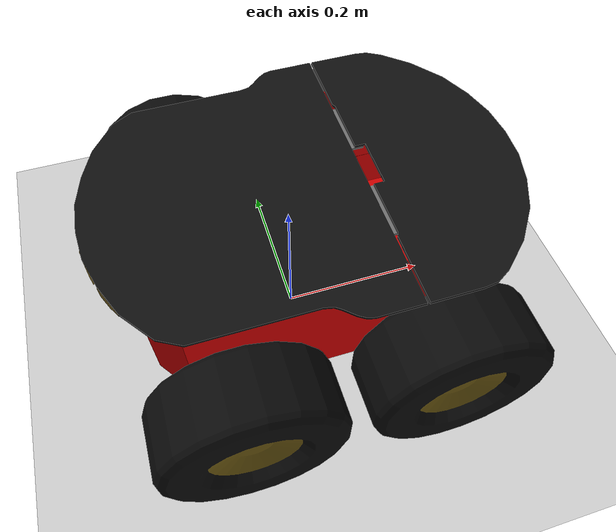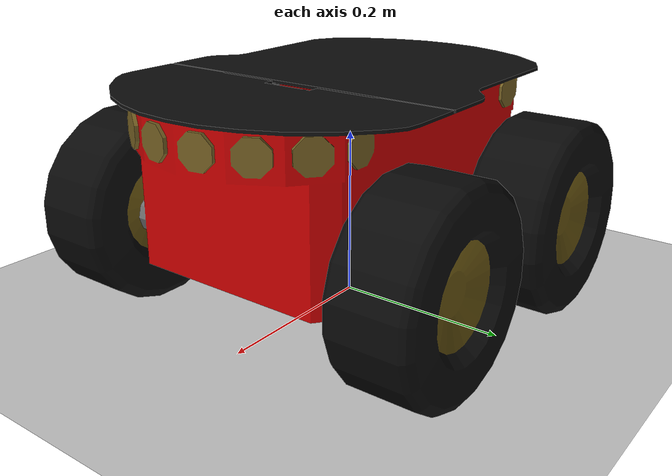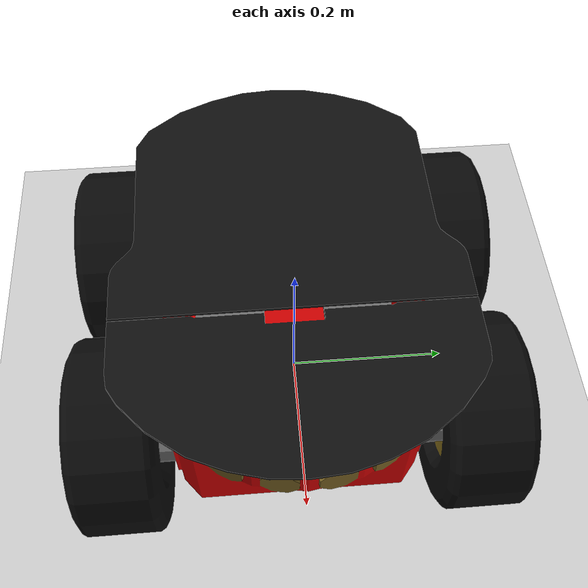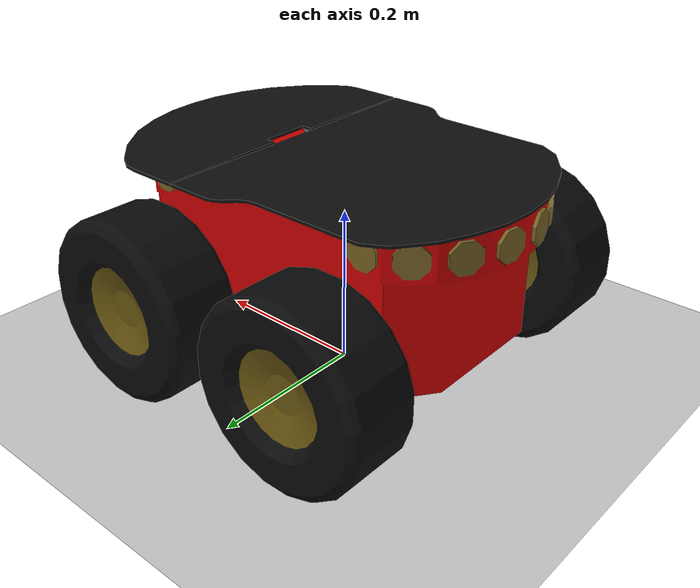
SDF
<sdf version="1.6">
 <world name="default">
  <light name="sun" type="directional">
   <pose>0 0 10 0 -0 0</pose>
   <diffuse>0.8 0.8 0.8 1</diffuse>
   <specular>0.1 0.1 0.1 1</specular>
   <attenuation>
    <range>1000</range>
    <constant>0.9</constant>
    <linear>0.01</linear>
    <quadratic>0.001</quadratic>
   </attenuation>
   <direction>-0.5 0.5 -1</direction>
  </light>
  <model name="ground_plane">
   <static>1</static>
   <link name="link">
    <collision name="collision">
     <geometry><plane><normal>0 0 1</normal><size>100 100</size></plane></geometry>
     <surface><friction><ode><mu>100</mu><mu2>50</mu2></ode></friction></surface>
    </collision>
    <visual name="visual">
     <cast_shadows>0</cast_shadows>
     <geometry><plane><normal>0 0 1</normal><size>100 100</size></plane></geometry>
     <material>
      <script><uri>file://media/materials/scripts/gazebo.material</uri><name>Gazebo/Grey</name></script>
     </material>
    </visual>
   </link>
  </model>
  <gravity>0 0 -9.8</gravity>
  <magnetic_field>6e-06 2.3e-05 -4.2e-05</magnetic_field>
  <atmosphere type="adiabatic"/>
  <physics name="default_physics" default="0" type="ode">
   <max_step_size>0.001</max_step_size>
   <real_time_factor>1</real_time_factor>
   <real_time_update_rate>1000</real_time_update_rate>
  </physics>
  <scene><ambient>0.4 0.4 0.4 1</ambient><background>0.7 0.7 0.7 1</background><shadows>1</shadows></scene>
  <spherical_coordinates>
   <surface_model>EARTH_WGS84</surface_model>
   <latitude_deg>0</latitude_deg>
   <longitude_deg>0</longitude_deg>
   <elevation>0</elevation>
   <heading_deg>0</heading_deg>
  </spherical_coordinates>
  <light name="sun_0" type="directional">
   <pose>-42.1596 34.572 10 0 -0 0</pose>
   <diffuse>0.8 0.8 0.8 1</diffuse>
   <specular>0.1 0.1 0.1 1</specular>
   <attenuation>
    <range>1000</range>
    <constant>0.9</constant>
    <linear>0.01</linear>
    <quadratic>0.001</quadratic>
   </attenuation>
   <direction>-0.5 0.5 -1</direction>
  </light>
  <model name="pioneer3at">
   <pose>0.013224 -0.008197 0.169996 3.4e-05 -0 0.002083</pose>
   <static>0</static>
   <link name="chassis">
    <inertial>
     <mass>14</mass>
     <inertia>
      <ixx>0.147117</ixx>
      <ixy>0</ixy>
      <ixz>0</ixz>
      <iyy>0.334951</iyy>
      <iyz>0</iyz>
      <izz>0.397834</izz>
     </inertia>
    </inertial>
    <collision name="collision"><geometry><box><size>0.501 0.3 0.19</size></box></geometry></collision>
    <visual name="visual">
     <geometry><mesh><uri>model://pioneer3at/meshes/chassis.dae</uri><scale>1 1 1</scale></mesh></geometry>
    </visual>
   </link>
   <link name="right_front_wheel">
    <pose>0.125 -0.201 -0.06 1.5707 -0 0</pose>
    <inertial>
     <mass>1.5</mass>
     <inertia>
      <ixx>0.00524062</ixx>
      <iyy>0.00524062</iyy>
      <izz>0.009075</izz>
      <ixy>0</ixy>
      <ixz>0</ixz>
      <iyz>0</iyz>
     </inertia>
    </inertial>
    <collision name="collision">
     <geometry><cylinder><radius>0.11</radius><length>0.075</length></cylinder></geometry>
     <surface><friction><ode><mu>1</mu><mu2>1</mu2><slip1>0.5</slip1><slip2>0</slip2></ode></friction></surface>
    </collision>
    <visual name="visual">
     <geometry><mesh><uri>model://pioneer3at/meshes/wheel.dae</uri><scale>1 1 1</scale></mesh></geometry>
    </visual>
   </link>
   <link name="left_front_wheel">
    <pose>0.125 0.201 -0.06 1.5707 -0 0</pose>
    <inertial>
     <mass>1.5</mass>
     <inertia>
      <ixx>0.00524062</ixx>
      <iyy>0.00524062</iyy>
      <izz>0.009075</izz>
      <ixy>0</ixy>
      <ixz>0</ixz>
      <iyz>0</iyz>
     </inertia>
    </inertial>
    <collision name="collision">
     <geometry><cylinder><radius>0.11</radius><length>0.075</length></cylinder></geometry>
     <surface><friction><ode><mu>1</mu><mu2>1</mu2><slip1>0.5</slip1><slip2>0</slip2></ode></friction></surface>
    </collision>
    <visual name="visual">
     <geometry><mesh><uri>model://pioneer3at/meshes/wheel.dae</uri><scale>1 1 1</scale></mesh></geometry>
    </visual>
   </link>
   <link name="right_rear_wheel">
    <pose>-0.125 -0.201 -0.06 1.5707 -0 0</pose>
    <inertial>
     <mass>1.5</mass>
     <inertia>
      <ixx>0.00524062</ixx>
      <iyy>0.00524062</iyy>
      <izz>0.009075</izz>
      <ixy>0</ixy>
      <ixz>0</ixz>
      <iyz>0</iyz>
     </inertia>
    </inertial>
    <collision name="collision">
     <geometry><cylinder><radius>0.11</radius><length>0.075</length></cylinder></geometry>
     <surface><friction><ode><mu>1</mu><mu2>1</mu2><slip1>0.5</slip1><slip2>0</slip2></ode></friction></surface>
    </collision>
    <visual name="visual">
     <geometry><mesh><uri>model://pioneer3at/meshes/wheel.dae</uri><scale>1 1 1</scale></mesh></geometry>
    </visual>
   </link>
   <link name="left_rear_wheel">
    <pose>-0.125 0.201 -0.06 1.5707 -0 0</pose>
    <inertial>
     <mass>1.5</mass>
     <inertia>
      <ixx>0.00524062</ixx>
      <iyy>0.00524062</iyy>
      <izz>0.009075</izz>
      <ixy>0</ixy>
      <ixz>0</ixz>
      <iyz>0</iyz>
     </inertia>
    </inertial>
    <collision name="collision">
     <geometry><cylinder><radius>0.11</radius><length>0.075</length></cylinder></geometry>
     <surface><friction><ode><mu>1</mu><mu2>1</mu2><slip1>0.5</slip1><slip2>0</slip2></ode></friction></surface>
    </collision>
    <visual name="visual">
     <geometry><mesh><uri>model://pioneer3at/meshes/wheel.dae</uri><scale>1 1 1</scale></mesh></geometry>
    </visual>
   </link>
   <joint name="right_front" type="revolute">
    <child>right_front_wheel</child>
    <parent>chassis</parent>
    <axis>
     <xyz>0 1 0</xyz>
     <use_parent_model_frame>1</use_parent_model_frame>
     <limit><lower>-1e+16</lower><upper>1e+16</upper></limit>
     <dynamics><spring_reference>0</spring_reference><spring_stiffness>0</spring_stiffness></dynamics>
    </axis>
   </joint>
   <joint name="right_rear" type="revolute">
    <child>right_rear_wheel</child>
    <parent>chassis</parent>
    <axis>
     <xyz>0 1 0</xyz>
     <use_parent_model_frame>1</use_parent_model_frame>
     <limit><lower>-1e+16</lower><upper>1e+16</upper></limit>
     <dynamics><spring_reference>0</spring_reference><spring_stiffness>0</spring_stiffness></dynamics>
    </axis>
   </joint>
   <joint name="left_front" type="revolute">
    <child>left_front_wheel</child>
    <parent>chassis</parent>
    <axis>
     <xyz>0 1 0</xyz>
     <use_parent_model_frame>1</use_parent_model_frame>
     <limit><lower>-1e+16</lower><upper>1e+16</upper></limit>
     <dynamics><spring_reference>0</spring_reference><spring_stiffness>0</spring_stiffness></dynamics>
    </axis>
   </joint>
   <joint name="left_rear" type="revolute">
    <child>left_rear_wheel</child>
    <parent>chassis</parent>
    <axis>
     <xyz>0 1 0</xyz>
     <use_parent_model_frame>1</use_parent_model_frame>
     <limit><lower>-1e+16</lower><upper>1e+16</upper></limit>
     <dynamics><spring_reference>0</spring_reference><spring_stiffness>0</spring_stiffness></dynamics>
    </axis>
   </joint>
   <plugin name="SkidSteerDrivePlugin" filename="libSkidSteerDrivePlugin.so">
    <right_front>right_front</right_front>
    <right_rear>right_rear</right_rear>
    <left_front>left_front</left_front>
    <left_rear>left_rear</left_rear>
    <MaxForce>5.0</MaxForce>
   </plugin>
  </model>
 </world>
</sdf>
